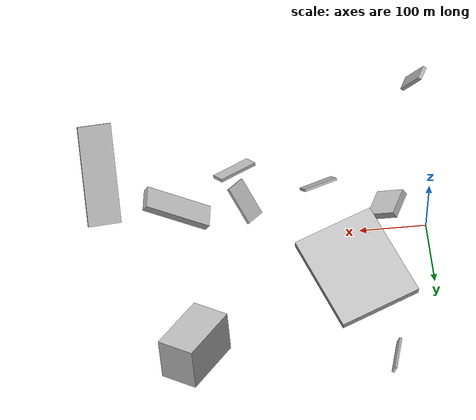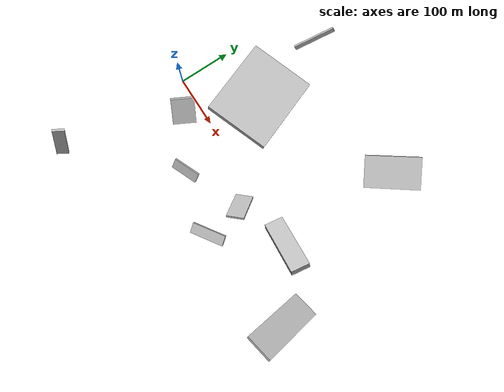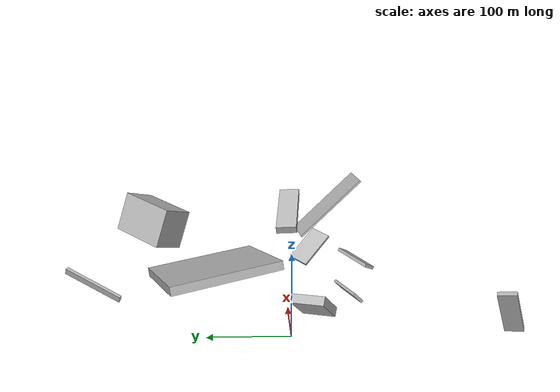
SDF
<sdf version="1.6">
 <world name="default">
  <scene>
   <sky><clouds><speed>12</speed></clouds></sky>
   <ambient>0.4 0.4 0.4 1</ambient>
   <background>0.7 0.7 0.7 1</background>
   <shadows>1</shadows>
  </scene>
  <gravity>0 0 -9.8066</gravity>
  <magnetic_field>6e-06 2.3e-05 -4.2e-05</magnetic_field>
  <physics default="0" name="default_physics" type="ode">
   <ode>
    <solver>
     <type>quick</type>
     <iters>10</iters>
     <sor>1.0</sor>
     <use_dynamic_moi_rescaling>0</use_dynamic_moi_rescaling>
    </solver>
    <constraints>
     <cfm>0</cfm>
     <erp>0.2</erp>
     <contact_max_correcting_vel>100</contact_max_correcting_vel>
     <contact_surface_layer>0.001</contact_surface_layer>
    </constraints>
   </ode>
   <max_step_size>0.004</max_step_size>
   <real_time_factor>1</real_time_factor>
   <real_time_update_rate>250</real_time_update_rate>
  </physics>
  <light name="sun" type="directional">
   <pose>0 0 10 0 0 0</pose>
   <diffuse>0.8 0.8 0.8 1</diffuse>
   <specular>0.2 0.2 0.2 1</specular>
   <attenuation>
    <range>1000</range>
    <constant>0.9</constant>
    <linear>0.01</linear>
    <quadratic>0.001</quadratic>
   </attenuation>
   <direction>-0.5 0.1 -0.9</direction>
  </light>
  <model name="building_1">
   <static>0</static>
   <pose>335.38499203085513 179.81010144725212 53.65840874676489 1.3504504557184516 -0.21686668330781414 2.5336302554607784</pose>
   <link name="link">
    <gravity>0</gravity>
    <pose>0 0 47.5 0 0 0</pose>
    <collision name="collision"><geometry><box><size>56 64 95</size></box></geometry></collision>
    <visual name="visual">
     <cast_shadows>0</cast_shadows>
     <geometry><box><size>56 64 95</size></box></geometry>
     <material>
      <script>
       <uri>model://HANNAS_wall/materials/scripts</uri>
       <uri>model://HANNAS_wall/materials/textures</uri>
       <name>vrc/HANNAS_wall</name>
      </script>
     </material>
    </visual>
   </link>
  </model>
  <model name="building_2">
   <static>0</static>
   <pose>117.4318587179837 96.99593633510085 43.48807895763844 -0.0724083573736468 -0.1068397259750828 -1.190768273105887</pose>
   <link name="link">
    <gravity>0</gravity>
    <pose>0 0 6.0 0 0 0</pose>
    <collision name="collision"><geometry><box><size>150 124 12</size></box></geometry></collision>
    <visual name="visual">
     <cast_shadows>0</cast_shadows>
     <geometry><box><size>150 124 12</size></box></geometry>
     <material>
      <script>
       <uri>model://HANNAS_wall/materials/scripts</uri>
       <uri>model://HANNAS_wall/materials/textures</uri>
       <name>vrc/HANNAS_wall</name>
      </script>
     </material>
    </visual>
   </link>
  </model>
  <model name="building_3">
   <static>0</static>
   <pose>148.6225551336835 -81.57565977445515 11.194307199629282 2.312800990393089 -0.09108310775250204 0.3930318572752108</pose>
   <link name="link">
    <gravity>0</gravity>
    <pose>0 0 10.0 0 0 0</pose>
    <collision name="collision"><geometry><box><size>54 4 20</size></box></geometry></collision>
    <visual name="visual">
     <cast_shadows>0</cast_shadows>
     <geometry><box><size>54 4 20</size></box></geometry>
     <material>
      <script>
       <uri>model://HANNAS_wall/materials/scripts</uri>
       <uri>model://HANNAS_wall/materials/textures</uri>
       <name>vrc/HANNAS_wall</name>
      </script>
     </material>
    </visual>
   </link>
  </model>
  <model name="building_4">
   <static>0</static>
   <pose>-8.392418900939077 -244.33165978820276 30.047692040073134 -1.3891493744342318 0.50624947017069 2.7349954583190756</pose>
   <link name="link">
    <gravity>0</gravity>
    <pose>0 0 11.0 0 0 0</pose>
    <collision name="collision"><geometry><box><size>6 61 22</size></box></geometry></collision>
    <visual name="visual">
     <cast_shadows>0</cast_shadows>
     <geometry><box><size>6 61 22</size></box></geometry>
     <material>
      <script>
       <uri>model://HANNAS_wall/materials/scripts</uri>
       <uri>model://HANNAS_wall/materials/textures</uri>
       <name>vrc/HANNAS_wall</name>
      </script>
     </material>
    </visual>
   </link>
  </model>
  <model name="building_5">
   <static>0</static>
   <pose>325.4996663594163 -7.762271877168652 53.52133454463343 -0.12593001759433453 1.0761213687365627 -0.24894844454519025</pose>
   <link name="link">
    <gravity>0</gravity>
    <pose>0 0 51.5 0 0 0</pose>
    <collision name="collision"><geometry><box><size>13 34 103</size></box></geometry></collision>
    <visual name="visual">
     <cast_shadows>0</cast_shadows>
     <geometry><box><size>13 34 103</size></box></geometry>
     <material>
      <script>
       <uri>model://HANNAS_wall/materials/scripts</uri>
       <uri>model://HANNAS_wall/materials/textures</uri>
       <name>vrc/HANNAS_wall</name>
      </script>
     </material>
    </visual>
   </link>
  </model>
  <model name="building_6">
   <static>0</static>
   <pose>68.38499169054633 212.7008441160998 25.22579126822138 -0.7184164876793872 0.9749458496963416 0.5078750489029886</pose>
   <link name="link">
    <gravity>0</gravity>
    <pose>0 0 39.5 0 0 0</pose>
    <collision name="collision"><geometry><box><size>9 4 79</size></box></geometry></collision>
    <visual name="visual">
     <cast_shadows>0</cast_shadows>
     <geometry><box><size>9 4 79</size></box></geometry>
     <material>
      <script>
       <uri>model://HANNAS_wall/materials/scripts</uri>
       <uri>model://HANNAS_wall/materials/textures</uri>
       <name>vrc/HANNAS_wall</name>
      </script>
     </material>
    </visual>
   </link>
  </model>
  <model name="building_7">
   <static>0</static>
   <pose>282.3662281049338 -123.8688736320079 13.50691955598724 0.47056058932932426 -1.1271017754966106 -1.413648549429702</pose>
   <link name="link">
    <gravity>0</gravity>
    <pose>0 0 10.0 0 0 0</pose>
    <collision name="collision"><geometry><box><size>5 66 20</size></box></geometry></collision>
    <visual name="visual">
     <cast_shadows>0</cast_shadows>
     <geometry><box><size>5 66 20</size></box></geometry>
     <material>
      <script>
       <uri>model://HANNAS_wall/materials/scripts</uri>
       <uri>model://HANNAS_wall/materials/textures</uri>
       <name>vrc/HANNAS_wall</name>
      </script>
     </material>
    </visual>
   </link>
  </model>
  <model name="building_8">
   <static>0</static>
   <pose>45.341825826585485 -50.58811135419443 19.58421731520677 1.6529887783326722 0.9684654223794521 2.7432290917247455</pose>
   <link name="link">
    <gravity>0</gravity>
    <pose>0 0 22.0 0 0 0</pose>
    <collision name="collision"><geometry><box><size>12 48 44</size></box></geometry></collision>
    <visual name="visual">
     <cast_shadows>0</cast_shadows>
     <geometry><box><size>12 48 44</size></box></geometry>
     <material>
      <script>
       <uri>model://HANNAS_wall/materials/scripts</uri>
       <uri>model://HANNAS_wall/materials/textures</uri>
       <name>vrc/HANNAS_wall</name>
      </script>
     </material>
    </visual>
   </link>
  </model>
  <model name="building_9">
   <static>0</static>
   <pose>266.6619308171456 -41.27100585813105 41.60016379721848 -2.815658997487245 -0.6914432087043121 -0.9579712534971538</pose>
   <link name="link">
    <gravity>0</gravity>
    <pose>0 0 2.0 0 0 0</pose>
    <collision name="collision"><geometry><box><size>60 33 4</size></box></geometry></collision>
    <visual name="visual">
     <cast_shadows>0</cast_shadows>
     <geometry><box><size>60 33 4</size></box></geometry>
     <material>
      <script>
       <uri>model://HANNAS_wall/materials/scripts</uri>
       <uri>model://HANNAS_wall/materials/textures</uri>
       <name>vrc/HANNAS_wall</name>
      </script>
     </material>
    </visual>
   </link>
  </model>
  <model name="building_10">
   <static>0</static>
   <pose>455.57522568852755 -96.15519484299756 63.04458422354187 1.3479390388708132 -0.7868031566953813 1.9237145155895767</pose>
   <link name="link">
    <gravity>0</gravity>
    <pose>0 0 25.5 0 0 0</pose>
    <collision name="collision"><geometry><box><size>4 150 51</size></box></geometry></collision>
    <visual name="visual">
     <cast_shadows>0</cast_shadows>
     <geometry><box><size>4 150 51</size></box></geometry>
     <material>
      <script>
       <uri>model://HANNAS_wall/materials/scripts</uri>
       <uri>model://HANNAS_wall/materials/textures</uri>
       <name>vrc/HANNAS_wall</name>
      </script>
     </material>
    </visual>
   </link>
  </model>
 </world>
</sdf>
